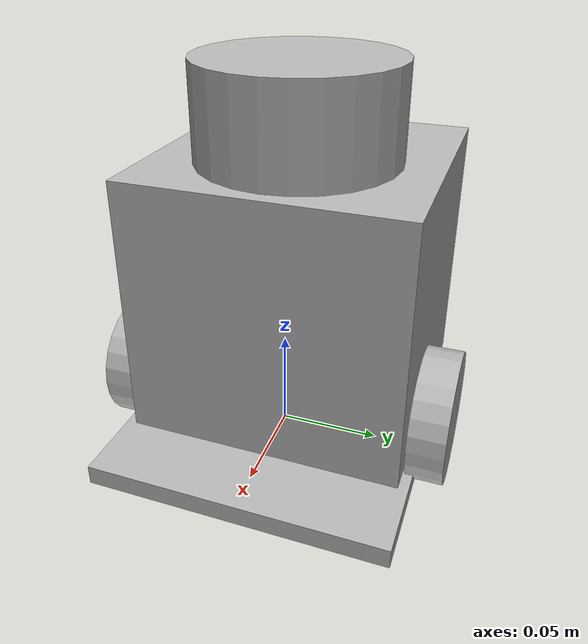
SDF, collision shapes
<?xml version="1.0" ?>
<sdf version="1.5">
  <model name="turtlebot3_burger3">
    <pose>0.0 0.0 0.0 0.0 0.0 0.0</pose>

    <link name="base_footprint"/>

    <link name="base_link">

      <inertial>
        <pose>-0.032 0 0.070 0 0 0</pose>
        <inertia>
          <ixx>7.2397393e-01</ixx>
          <ixy>4.686399e-10</ixy>
          <ixz>-1.09525703e-08</ixz>
          <iyy>7.2397393e-01</iyy>
          <iyz>2.8582649e-09</iyz>
          <izz>6.53050163e-01</izz>
        </inertia>
        <mass>8.2573504e-01</mass>
      </inertial>

      <collision name="base_collision">
        <pose>-0.032 0 0.070 0 0 0</pose>
        <geometry>
          <box>
            <size>0.140 0.140 0.140</size>
          </box>
        </geometry>
      </collision>

      <visual name="base_visual">
        <pose>-0.032 0 0 0 0 0</pose>
        <geometry>
          <mesh>
            <uri>model://turtlebot3_common/meshes/burger_base.dae</uri>
            <scale>0.001 0.001 0.001</scale>
          </mesh>
        </geometry>
      </visual>
    </link>

    <link name="imu_link">
      <sensor name="tb3_imu" type="imu">
        <always_on>true</always_on>
        <update_rate>200</update_rate>
        <imu>
          <angular_velocity>
            <x>
              <noise type="gaussian">
                <mean>0.0</mean>
                <stddev>2e-4</stddev>
              </noise>
            </x>
            <y>
              <noise type="gaussian">
                <mean>0.0</mean>
                <stddev>2e-4</stddev>
              </noise>
            </y>
            <z>
              <noise type="gaussian">
                <mean>0.0</mean>
                <stddev>2e-4</stddev>
              </noise>
            </z>
          </angular_velocity>
          <linear_acceleration>
            <x>
              <noise type="gaussian">
                <mean>0.0</mean>
                <stddev>1.7e-2</stddev>
              </noise>
            </x>
            <y>
              <noise type="gaussian">
                <mean>0.0</mean>
                <stddev>1.7e-2</stddev>
              </noise>
            </y>
            <z>
              <noise type="gaussian">
                <mean>0.0</mean>
                <stddev>1.7e-2</stddev>
              </noise>
            </z>
          </linear_acceleration>
        </imu>
        <plugin name="turtlebot3_imu" filename="libgazebo_ros_imu_sensor.so">
          <ros>
            <namespace>/robot3</namespace>
            <remapping>~/out:=imu</remapping>
          </ros>
        </plugin>
      </sensor>
    </link>

    <link name="base_scan">
      <inertial>
        <pose>-0.020 0 0.161 0 0 0</pose>
        <inertia>
          <ixx>0.001</ixx>
          <ixy>0.000</ixy>
          <ixz>0.000</ixz>
          <iyy>0.001</iyy>
          <iyz>0.000</iyz>
          <izz>0.001</izz>
        </inertia>
        <mass>0.114</mass>
      </inertial>

      <collision name="lidar_sensor_collision">
        <pose>-0.020 0 0.161 0 0 0</pose>
        <geometry>
          <cylinder>
            <radius>0.0508</radius>
            <length>0.055</length>
          </cylinder>
        </geometry>
      </collision>

      <visual name="lidar_sensor_visual">
        <pose>-0.032 0 0.171 0 0 0</pose>
        <geometry>
          <mesh>
            <uri>model://turtlebot3_common/meshes/lds.dae</uri>
            <scale>0.001 0.001 0.001</scale>
          </mesh>
        </geometry>
      </visual>

      <sensor name="hls_lfcd_lds" type="ray">
        <always_on>true</always_on>
        <visualize>false</visualize>
        <pose>-0.032 0 0.171 0 0 0</pose>
        <update_rate>5</update_rate>
        <ray>
          <scan>
            <horizontal>
              <samples>360</samples>
              <resolution>1.000000</resolution>
              <min_angle>0.000000</min_angle>
              <max_angle>6.280000</max_angle>
            </horizontal>
          </scan>
          <range>
            <min>0.120000</min>
            <max>3.5</max>
            <resolution>0.015000</resolution>
          </range>
          <noise>
            <type>gaussian</type>
            <mean>0.0</mean>
            <stddev>0.01</stddev>
          </noise>
        </ray>
        <plugin name="turtlebot3_laserscan" filename="libgazebo_ros_ray_sensor.so">
          <ros>
            <namespace>/robot3</namespace>
            <remapping>~/out:=scan</remapping>
          </ros>
          <output_type>sensor_msgs/LaserScan</output_type>
          <frame_name>base_scan</frame_name>
        </plugin>
      </sensor>
    </link>

    <link name="wheel_left_link">

      <inertial>
        <pose>0 0.08 0.023 -1.57 0 0</pose>
        <inertia>
          <ixx>1.8158194e-03</ixx>
          <ixy>-9.3392e-12</ixy>
          <ixz>1.04909e-11</ixz>
          <iyy>3.2922126e-03</iyy>
          <iyz>5.75694e-11</iyz>
          <izz>1.8158194e-03</izz>
        </inertia>
        <mass>2.8498940e-02</mass>
      </inertial>

      <collision name="wheel_left_collision">
        <pose>0 0.08 0.023 -1.57 0 0</pose>
        <geometry>
          <cylinder>
            <radius>0.033</radius>
            <length>0.018</length>
          </cylinder>
        </geometry>
        <surface>
          <!-- This friction pamareter don't contain reliable data!! -->
          <friction>
            <ode>
              <mu>100000.0</mu>
              <mu2>100000.0</mu2>
              <fdir1>0 0 0</fdir1>
              <slip1>0.0</slip1>
              <slip2>0.0</slip2>
            </ode>
          </friction>
          <contact>
            <ode>
              <soft_cfm>0</soft_cfm>
              <soft_erp>0.2</soft_erp>
              <kp>1e+5</kp>
              <kd>1</kd>
              <max_vel>0.01</max_vel>
              <min_depth>0.001</min_depth>
            </ode>
          </contact>
        </surface>
      </collision>

      <visual name="wheel_left_visual">
        <pose>0 0.08 0.023 0 0 0</pose>
        <geometry>
          <mesh>
            <uri>model://turtlebot3_common/meshes/tire.dae</uri>
            <scale>0.001 0.001 0.001</scale>
          </mesh>
        </geometry>
      </visual>
    </link>

    <link name="wheel_right_link">

      <inertial>
        <pose>0.0 -0.08 0.023 -1.57 0 0</pose>
        <inertia>
          <ixx>1.8158194e-03</ixx>
          <ixy>-9.3392e-12</ixy>
          <ixz>1.04909e-11</ixz>
          <iyy>3.2922126e-03</iyy>
          <iyz>5.75694e-11</iyz>
          <izz>1.8158194e-03</izz>
        </inertia>
        <mass>2.8498940e-02</mass>
      </inertial>

      <collision name="wheel_right_collision">
        <pose>0.0 -0.08 0.023 -1.57 0 0</pose>
        <geometry>
          <cylinder>
            <radius>0.033</radius>
            <length>0.018</length>
          </cylinder>
        </geometry>
        <surface>
          <!-- This friction pamareter don't contain reliable data!! -->
          <friction>
            <ode>
              <mu>100000.0</mu>
              <mu2>100000.0</mu2>
              <fdir1>0 0 0</fdir1>
              <slip1>0.0</slip1>
              <slip2>0.0</slip2>
            </ode>
          </friction>
          <contact>
            <ode>
              <soft_cfm>0</soft_cfm>
              <soft_erp>0.2</soft_erp>
              <kp>1e+5</kp>
              <kd>1</kd>
              <max_vel>0.01</max_vel>
              <min_depth>0.001</min_depth>
            </ode>
          </contact>
        </surface>
      </collision>

      <visual name="wheel_right_visual">
        <pose>0.0 -0.08 0.023 0 0 0</pose>
        <geometry>
          <mesh>
            <uri>model://turtlebot3_common/meshes/tire.dae</uri>
            <scale>0.001 0.001 0.001</scale>
          </mesh>
        </geometry>
      </visual>
    </link>

    <link name='caster_back_link'>
      <pose>-0.081 0 -0.004 -1.57 0 0</pose>
      <inertial>
        <mass>0.005</mass>
        <inertia>
          <ixx>0.001</ixx>
          <ixy>0.000</ixy>
          <ixz>0.000</ixz>
          <iyy>0.001</iyy>
          <iyz>0.000</iyz>
          <izz>0.001</izz>
        </inertia>
      </inertial>
      <collision name='collision'>
        <geometry>
          <sphere>
            <radius>0.005000</radius>
          </sphere>
        </geometry>
        <surface>
          <contact>
            <ode>
              <soft_cfm>0</soft_cfm>
              <soft_erp>0.2</soft_erp>
              <kp>1e+5</kp>
              <kd>1</kd>
              <max_vel>0.01</max_vel>
              <min_depth>0.001</min_depth>
            </ode>
          </contact>
        </surface>
      </collision>
    </link>

    <joint name="base_joint" type="fixed">
      <parent>base_footprint</parent>
      <child>base_link</child>
      <pose>0.0 0.0 0.010 0 0 0</pose>
    </joint>

    <joint name="wheel_left_joint" type="revolute">
      <parent>base_link</parent>
      <child>wheel_left_link</child>
      <pose>0.0 0.08 0.023 -1.57 0 0</pose>
      <axis>
        <xyz>0 0 1</xyz>
      </axis>
    </joint>

    <joint name="wheel_right_joint" type="revolute">
      <parent>base_link</parent>
      <child>wheel_right_link</child>
      <pose>0.0 -0.08 0.023 -1.57 0 0</pose>
      <axis>
        <xyz>0 0 1</xyz>
      </axis>
    </joint>

    <joint name='caster_back_joint' type='ball'>
      <parent>base_link</parent>
      <child>caster_back_link</child>
    </joint>

    <joint name="imu_joint" type="fixed">
      <parent>base_link</parent>
      <child>imu_link</child>
      <pose>-0.032 0 0.068 0 0 0</pose>
      <axis>
        <xyz>0 0 1</xyz>
      </axis>
    </joint>

    <joint name="lidar_joint" type="fixed">
      <parent>base_link</parent>
      <child>base_scan</child>
      <pose>-0.032 0 0.171 0 0 0</pose>
      <axis>
        <xyz>0 0 1</xyz>
      </axis>
    </joint>

    <link name="camera_link"/>

    <link name="camera_rgb_optical_frame">
      <inertial>
        <pose>0.076 0.0 0.093 0 0 0</pose>
        <inertia>
          <ixx>0.001</ixx>
          <ixy>0.000</ixy>
          <ixz>0.000</ixz>
          <iyy>0.001</iyy>
          <iyz>0.000</iyz>
          <izz>0.001</izz>
        </inertia>
        <mass>0.035</mass>
      </inertial>

      <pose>0.076 0.0 0.093 0 0 0</pose>
      <sensor name="camera" type="camera">
        <always_on>true</always_on>
        <visualize>true</visualize>
        <update_rate>30</update_rate>
        <camera name="picam">
          <horizontal_fov>1.085595</horizontal_fov>
          <image>
              <width>640</width>
              <height>480</height>
              <format>R8G8B8</format>
          </image>
          <clip>
              <near>0.03</near>
              <far>100</far>
          </clip>
          <noise>
            <type>gaussian</type>
            <mean>0.0</mean>
            <stddev>0.007</stddev>
          </noise>
        </camera>
          <plugin name="camera_driver" filename="libgazebo_ros_camera.so">
            <ros>
              <namespace>/robot3</namespace>
            </ros>
          </plugin>
      </sensor>
    </link>

    <!-- apriltag -->
    <link name="apriltag">
      <inertial>
        <mass>1.0</mass>
        <inertia>
          <ixx>0.083</ixx>
          <ixy>0.0</ixy>
          <ixz>0.0</ixz>
          <iyy>0.083</iyy>
          <iyz>0.0</iyz>
          <izz>0.083</izz>
        </inertia>
      </inertial>
      <collision name="collision">
        <geometry>
          <box>
            <size>0.15 0.15 0.01</size>
          </box>
        </geometry>
      </collision>
      <visual name="visual">
        <pose>-0.032 0 0.18 0 0 0</pose>
        <geometry>
          <box>
            <size>0.15 0.15 0.01</size>
          </box>
        </geometry>
        <material>
          <script>
            <uri>model://turtlebot3_burger3/materials/apriltag.material</uri>
            <name>apriltag3</name>
          </script>
        </material>
      </visual>
    </link>

    <joint name="apriltag_joint" type="fixed">
      <parent>base_link</parent>
      <child>apriltag</child>
      <pose>0 0 0 0 0 0</pose>
      <axis>
        <xyz>0 0 1</xyz>
      </axis>
    </joint>

    <joint name="camera_joint" type="fixed">
      <parent>base_link</parent>
      <child>camera_link</child>
      <pose>0.073 -0.011 0.565 0 0.524 0</pose>
      <axis>
        <xyz>0 0 1</xyz>
      </axis>
    </joint>

    <joint name="camera_rgb_joint" type="fixed">
      <parent>camera_link</parent>
      <child>camera_rgb_optical_frame</child>
      <pose>0.003 0.011 0.009 0 0 0</pose>
      <axis>
        <xyz>0 0 1</xyz>
      </axis>
    </joint>

    <plugin name="turtlebot3_diff_drive" filename="libgazebo_ros_diff_drive.so">

      <ros>
        <namespace>/robot3</namespace>
      </ros>

      <update_rate>30</update_rate>

      <!-- wheels -->
      <left_joint>wheel_left_joint</left_joint>
      <right_joint>wheel_right_joint</right_joint>

      <!-- kinematics -->
      <wheel_separation>0.160</wheel_separation>
      <wheel_diameter>0.066</wheel_diameter>

      <!-- limits -->
      <max_wheel_torque>20</max_wheel_torque>
      <max_wheel_acceleration>1.0</max_wheel_acceleration>

      <command_topic>cmd_vel</command_topic>

      <!-- output -->
      <publish_odom>true</publish_odom>
      <publish_odom_tf>true</publish_odom_tf>
      <publish_wheel_tf>false</publish_wheel_tf>

      <odometry_topic>odom</odometry_topic>
      <odometry_frame>robot3/odom</odometry_frame>
      <robot_base_frame>robot3/base_footprint</robot_base_frame>

    </plugin>

    <plugin name="turtlebot3_joint_state" filename="libgazebo_ros_joint_state_publisher.so">
      <ros>
        <namespace>/robot3</namespace>
        <remapping>~/out:=joint_states</remapping>
      </ros>
      <update_rate>30</update_rate>
      <joint_name>wheel_left_joint</joint_name>
      <joint_name>wheel_right_joint</joint_name>
    </plugin>
  </model>
</sdf>
